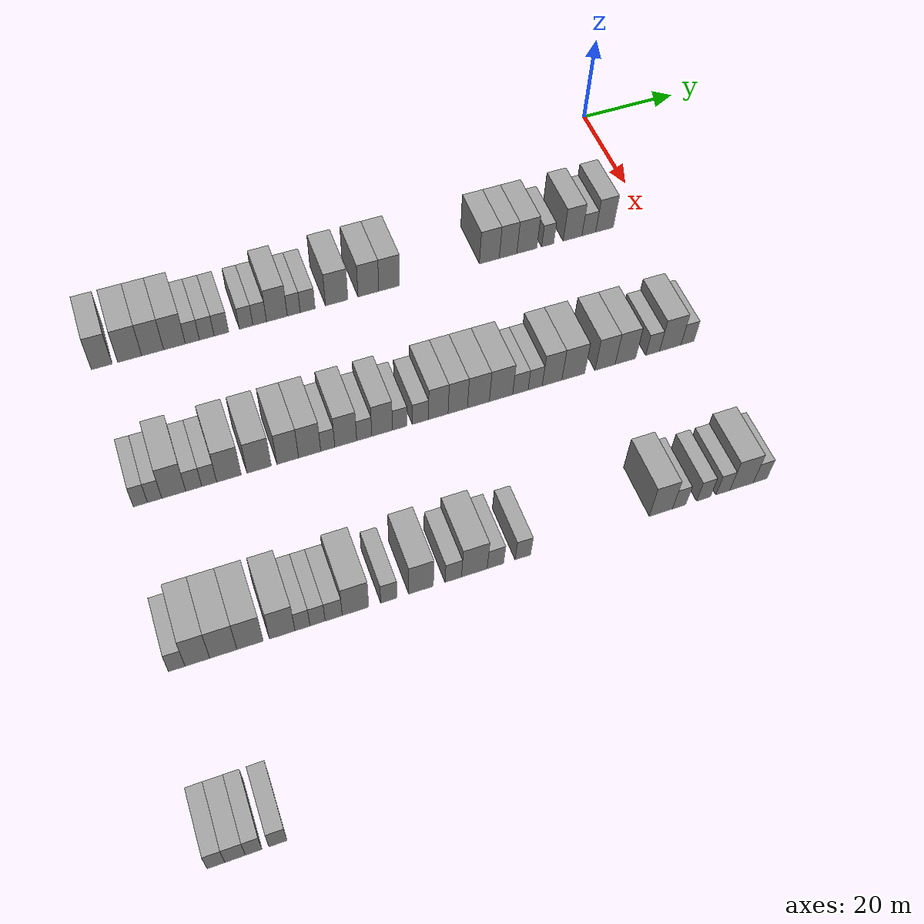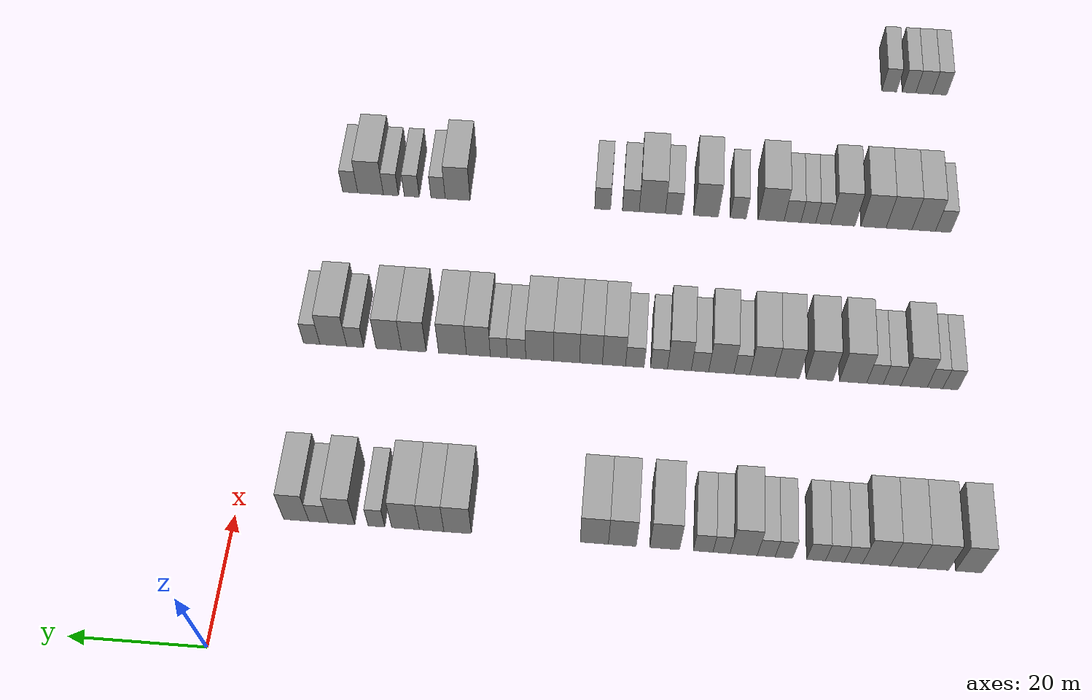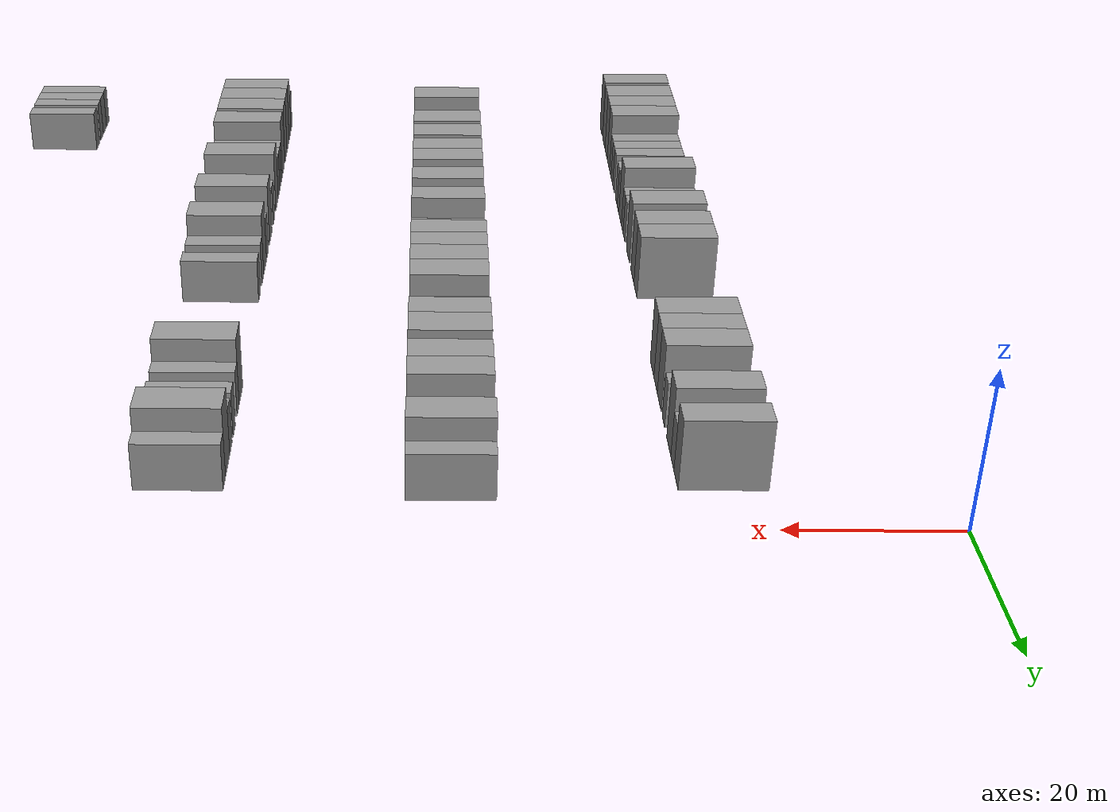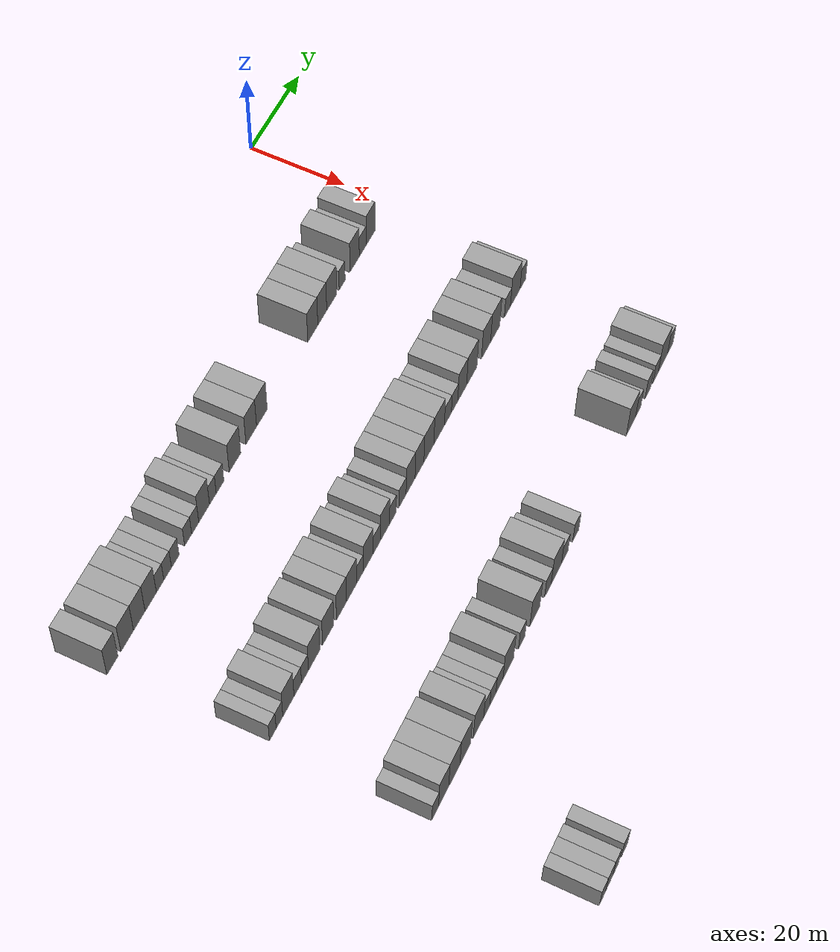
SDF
<sdf version="1.6">
 <world name="default">
  <model name="building_81">
   <static>1</static>
   <pose>25.0000 -107.7932 0 0.000000 0.000000 0.000000</pose>
   <link name="link">
    <pose>0 0 4.50 0 0 0</pose>
    <collision name="collision"><geometry><box><size>10.0000 3.7948 9.0000</size></box></geometry></collision>
    <visual name="visual">
     <cast_shadows>0</cast_shadows>
     <geometry><box><size>10.0000 3.7948 9.0000</size></box></geometry>
     <material>
      <script>
       <uri>model://grey_wall/materials/scripts</uri>
       <uri>model://grey_wall/materials/textures</uri>
       <name>vrc/grey_wall</name>
      </script>
     </material>
    </visual>
   </link>
  </model>
  <model name="building_82">
   <static>1</static>
   <pose>25.0000 -102.7055 0 0.000000 0.000000 0.000000</pose>
   <link name="link">
    <pose>0 0 4.50 0 0 0</pose>
    <collision name="collision"><geometry><box><size>10.0000 4.3806 9.0000</size></box></geometry></collision>
    <visual name="visual">
     <cast_shadows>0</cast_shadows>
     <geometry><box><size>10.0000 4.3806 9.0000</size></box></geometry>
     <material>
      <script>
       <uri>model://grey_wall/materials/scripts</uri>
       <uri>model://grey_wall/materials/textures</uri>
       <name>vrc/grey_wall</name>
      </script>
     </material>
    </visual>
   </link>
  </model>
  <model name="building_83">
   <static>1</static>
   <pose>25.0000 -98.4993 0 0.000000 0.000000 0.000000</pose>
   <link name="link">
    <pose>0 0 4.50 0 0 0</pose>
    <collision name="collision"><geometry><box><size>10.0000 4.0318 9.0000</size></box></geometry></collision>
    <visual name="visual">
     <cast_shadows>0</cast_shadows>
     <geometry><box><size>10.0000 4.0318 9.0000</size></box></geometry>
     <material>
      <script>
       <uri>model://grey_wall/materials/scripts</uri>
       <uri>model://grey_wall/materials/textures</uri>
       <name>vrc/grey_wall</name>
      </script>
     </material>
    </visual>
   </link>
  </model>
  <model name="building_84">
   <static>1</static>
   <pose>25.0000 -94.4775 0 0.000000 0.000000 0.000000</pose>
   <link name="link">
    <pose>0 0 4.50 0 0 0</pose>
    <collision name="collision"><geometry><box><size>10.0000 4.0117 9.0000</size></box></geometry></collision>
    <visual name="visual">
     <cast_shadows>0</cast_shadows>
     <geometry><box><size>10.0000 4.0117 9.0000</size></box></geometry>
     <material>
      <script>
       <uri>model://grey_wall/materials/scripts</uri>
       <uri>model://grey_wall/materials/textures</uri>
       <name>vrc/grey_wall</name>
      </script>
     </material>
    </visual>
   </link>
  </model>
  <model name="building_85">
   <static>1</static>
   <pose>25.0000 -91.1583 0 0.000000 0.000000 0.000000</pose>
   <link name="link">
    <pose>0 0 3.00 0 0 0</pose>
    <collision name="collision"><geometry><box><size>10.0000 2.6267 6.0000</size></box></geometry></collision>
    <visual name="visual">
     <cast_shadows>0</cast_shadows>
     <geometry><box><size>10.0000 2.6267 6.0000</size></box></geometry>
     <material>
      <script>
       <uri>model://grey_wall/materials/scripts</uri>
       <uri>model://grey_wall/materials/textures</uri>
       <name>vrc/grey_wall</name>
      </script>
     </material>
    </visual>
   </link>
  </model>
  <model name="building_86">
   <static>1</static>
   <pose>25.0000 -88.4710 0 0.000000 0.000000 0.000000</pose>
   <link name="link">
    <pose>0 0 3.00 0 0 0</pose>
    <collision name="collision"><geometry><box><size>10.0000 2.7479 6.0000</size></box></geometry></collision>
    <visual name="visual">
     <cast_shadows>0</cast_shadows>
     <geometry><box><size>10.0000 2.7479 6.0000</size></box></geometry>
     <material>
      <script>
       <uri>model://grey_wall/materials/scripts</uri>
       <uri>model://grey_wall/materials/textures</uri>
       <name>vrc/grey_wall</name>
      </script>
     </material>
    </visual>
   </link>
  </model>
  <model name="building_87">
   <static>1</static>
   <pose>25.0000 -85.7237 0 0.000000 0.000000 0.000000</pose>
   <link name="link">
    <pose>0 0 3.00 0 0 0</pose>
    <collision name="collision"><geometry><box><size>10.0000 2.7467 6.0000</size></box></geometry></collision>
    <visual name="visual">
     <cast_shadows>0</cast_shadows>
     <geometry><box><size>10.0000 2.7467 6.0000</size></box></geometry>
     <material>
      <script>
       <uri>model://grey_wall/materials/scripts</uri>
       <uri>model://grey_wall/materials/textures</uri>
       <name>vrc/grey_wall</name>
      </script>
     </material>
    </visual>
   </link>
  </model>
  <model name="building_88">
   <static>1</static>
   <pose>25.0000 -81.0692 0 0.000000 0.000000 0.000000</pose>
   <link name="link">
    <pose>0 0 3.00 0 0 0</pose>
    <collision name="collision"><geometry><box><size>10.0000 2.5622 6.0000</size></box></geometry></collision>
    <visual name="visual">
     <cast_shadows>0</cast_shadows>
     <geometry><box><size>10.0000 2.5622 6.0000</size></box></geometry>
     <material>
      <script>
       <uri>model://grey_wall/materials/scripts</uri>
       <uri>model://grey_wall/materials/textures</uri>
       <name>vrc/grey_wall</name>
      </script>
     </material>
    </visual>
   </link>
  </model>
  <model name="building_89">
   <static>1</static>
   <pose>25.0000 -78.4886 0 0.000000 0.000000 0.000000</pose>
   <link name="link">
    <pose>0 0 3.00 0 0 0</pose>
    <collision name="collision"><geometry><box><size>10.0000 2.5990 6.0000</size></box></geometry></collision>
    <visual name="visual">
     <cast_shadows>0</cast_shadows>
     <geometry><box><size>10.0000 2.5990 6.0000</size></box></geometry>
     <material>
      <script>
       <uri>model://grey_wall/materials/scripts</uri>
       <uri>model://grey_wall/materials/textures</uri>
       <name>vrc/grey_wall</name>
      </script>
     </material>
    </visual>
   </link>
  </model>
  <model name="building_90">
   <static>1</static>
   <pose>25.0000 -75.2040 0 0.000000 0.000000 0.000000</pose>
   <link name="link">
    <pose>0 0 4.50 0 0 0</pose>
    <collision name="collision"><geometry><box><size>10.0000 3.9703 9.0000</size></box></geometry></collision>
    <visual name="visual">
     <cast_shadows>0</cast_shadows>
     <geometry><box><size>10.0000 3.9703 9.0000</size></box></geometry>
     <material>
      <script>
       <uri>model://grey_wall/materials/scripts</uri>
       <uri>model://grey_wall/materials/textures</uri>
       <name>vrc/grey_wall</name>
      </script>
     </material>
    </visual>
   </link>
  </model>
  <model name="building_91">
   <static>1</static>
   <pose>25.0000 -71.9762 0 0.000000 0.000000 0.000000</pose>
   <link name="link">
    <pose>0 0 3.00 0 0 0</pose>
    <collision name="collision"><geometry><box><size>10.0000 2.4852 6.0000</size></box></geometry></collision>
    <visual name="visual">
     <cast_shadows>0</cast_shadows>
     <geometry><box><size>10.0000 2.4852 6.0000</size></box></geometry>
     <material>
      <script>
       <uri>model://grey_wall/materials/scripts</uri>
       <uri>model://grey_wall/materials/textures</uri>
       <name>vrc/grey_wall</name>
      </script>
     </material>
    </visual>
   </link>
  </model>
  <model name="building_92">
   <static>1</static>
   <pose>25.0000 -69.2979 0 0.000000 0.000000 0.000000</pose>
   <link name="link">
    <pose>0 0 3.00 0 0 0</pose>
    <collision name="collision"><geometry><box><size>10.0000 2.8715 6.0000</size></box></geometry></collision>
    <visual name="visual">
     <cast_shadows>0</cast_shadows>
     <geometry><box><size>10.0000 2.8715 6.0000</size></box></geometry>
     <material>
      <script>
       <uri>model://grey_wall/materials/scripts</uri>
       <uri>model://grey_wall/materials/textures</uri>
       <name>vrc/grey_wall</name>
      </script>
     </material>
    </visual>
   </link>
  </model>
  <model name="building_93">
   <static>1</static>
   <pose>25.0000 -63.6790 0 0.000000 0.000000 0.000000</pose>
   <link name="link">
    <pose>0 0 4.50 0 0 0</pose>
    <collision name="collision"><geometry><box><size>10.0000 4.3662 9.0000</size></box></geometry></collision>
    <visual name="visual">
     <cast_shadows>0</cast_shadows>
     <geometry><box><size>10.0000 4.3662 9.0000</size></box></geometry>
     <material>
      <script>
       <uri>model://grey_wall/materials/scripts</uri>
       <uri>model://grey_wall/materials/textures</uri>
       <name>vrc/grey_wall</name>
      </script>
     </material>
    </visual>
   </link>
  </model>
  <model name="building_94">
   <static>1</static>
   <pose>25.0000 -57.4563 0 0.000000 0.000000 0.000000</pose>
   <link name="link">
    <pose>0 0 4.50 0 0 0</pose>
    <collision name="collision"><geometry><box><size>10.0000 4.0792 9.0000</size></box></geometry></collision>
    <visual name="visual">
     <cast_shadows>0</cast_shadows>
     <geometry><box><size>10.0000 4.0792 9.0000</size></box></geometry>
     <material>
      <script>
       <uri>model://grey_wall/materials/scripts</uri>
       <uri>model://grey_wall/materials/textures</uri>
       <name>vrc/grey_wall</name>
      </script>
     </material>
    </visual>
   </link>
  </model>
  <model name="building_95">
   <static>1</static>
   <pose>25.0000 -53.3554 0 0.000000 0.000000 0.000000</pose>
   <link name="link">
    <pose>0 0 4.50 0 0 0</pose>
    <collision name="collision"><geometry><box><size>10.0000 4.1227 9.0000</size></box></geometry></collision>
    <visual name="visual">
     <cast_shadows>0</cast_shadows>
     <geometry><box><size>10.0000 4.1227 9.0000</size></box></geometry>
     <material>
      <script>
       <uri>model://grey_wall/materials/scripts</uri>
       <uri>model://grey_wall/materials/textures</uri>
       <name>vrc/grey_wall</name>
      </script>
     </material>
    </visual>
   </link>
  </model>
  <model name="building_96">
   <static>1</static>
   <pose>25.0000 -33.1854 0 0.000000 0.000000 0.000000</pose>
   <link name="link">
    <pose>0 0 4.50 0 0 0</pose>
    <collision name="collision"><geometry><box><size>10.0000 4.0724 9.0000</size></box></geometry></collision>
    <visual name="visual">
     <cast_shadows>0</cast_shadows>
     <geometry><box><size>10.0000 4.0724 9.0000</size></box></geometry>
     <material>
      <script>
       <uri>model://grey_wall/materials/scripts</uri>
       <uri>model://grey_wall/materials/textures</uri>
       <name>vrc/grey_wall</name>
      </script>
     </material>
    </visual>
   </link>
  </model>
  <model name="building_97">
   <static>1</static>
   <pose>25.0000 -29.3353 0 0.000000 0.000000 0.000000</pose>
   <link name="link">
    <pose>0 0 4.50 0 0 0</pose>
    <collision name="collision"><geometry><box><size>10.0000 3.6278 9.0000</size></box></geometry></collision>
    <visual name="visual">
     <cast_shadows>0</cast_shadows>
     <geometry><box><size>10.0000 3.6278 9.0000</size></box></geometry>
     <material>
      <script>
       <uri>model://grey_wall/materials/scripts</uri>
       <uri>model://grey_wall/materials/textures</uri>
       <name>vrc/grey_wall</name>
      </script>
     </material>
    </visual>
   </link>
  </model>
  <model name="building_98">
   <static>1</static>
   <pose>25.0000 -25.4486 0 0.000000 0.000000 0.000000</pose>
   <link name="link">
    <pose>0 0 4.50 0 0 0</pose>
    <collision name="collision"><geometry><box><size>10.0000 4.1456 9.0000</size></box></geometry></collision>
    <visual name="visual">
     <cast_shadows>0</cast_shadows>
     <geometry><box><size>10.0000 4.1456 9.0000</size></box></geometry>
     <material>
      <script>
       <uri>model://grey_wall/materials/scripts</uri>
       <uri>model://grey_wall/materials/textures</uri>
       <name>vrc/grey_wall</name>
      </script>
     </material>
    </visual>
   </link>
  </model>
  <model name="building_99">
   <static>1</static>
   <pose>25.0000 -21.1285 0 0.000000 0.000000 0.000000</pose>
   <link name="link">
    <pose>0 0 3.00 0 0 0</pose>
    <collision name="collision"><geometry><box><size>10.0000 2.4947 6.0000</size></box></geometry></collision>
    <visual name="visual">
     <cast_shadows>0</cast_shadows>
     <geometry><box><size>10.0000 2.4947 6.0000</size></box></geometry>
     <material>
      <script>
       <uri>model://grey_wall/materials/scripts</uri>
       <uri>model://grey_wall/materials/textures</uri>
       <name>vrc/grey_wall</name>
      </script>
     </material>
    </visual>
   </link>
  </model>
  <model name="building_100">
   <static>1</static>
   <pose>25.0000 -15.9112 0 0.000000 0.000000 0.000000</pose>
   <link name="link">
    <pose>0 0 4.50 0 0 0</pose>
    <collision name="collision"><geometry><box><size>10.0000 3.9399 9.0000</size></box></geometry></collision>
    <visual name="visual">
     <cast_shadows>0</cast_shadows>
     <geometry><box><size>10.0000 3.9399 9.0000</size></box></geometry>
     <material>
      <script>
       <uri>model://grey_wall/materials/scripts</uri>
       <uri>model://grey_wall/materials/textures</uri>
       <name>vrc/grey_wall</name>
      </script>
     </material>
    </visual>
   </link>
  </model>
  <model name="building_101">
   <static>1</static>
   <pose>25.0000 -12.4846 0 0.000000 0.000000 0.000000</pose>
   <link name="link">
    <pose>0 0 3.00 0 0 0</pose>
    <collision name="collision"><geometry><box><size>10.0000 2.9132 6.0000</size></box></geometry></collision>
    <visual name="visual">
     <cast_shadows>0</cast_shadows>
     <geometry><box><size>10.0000 2.9132 6.0000</size></box></geometry>
     <material>
      <script>
       <uri>model://grey_wall/materials/scripts</uri>
       <uri>model://grey_wall/materials/textures</uri>
       <name>vrc/grey_wall</name>
      </script>
     </material>
    </visual>
   </link>
  </model>
  <model name="building_102">
   <static>1</static>
   <pose>25.0000 -9.1486 0 0.000000 0.000000 0.000000</pose>
   <link name="link">
    <pose>0 0 4.50 0 0 0</pose>
    <collision name="collision"><geometry><box><size>10.0000 3.7589 9.0000</size></box></geometry></collision>
    <visual name="visual">
     <cast_shadows>0</cast_shadows>
     <geometry><box><size>10.0000 3.7589 9.0000</size></box></geometry>
     <material>
      <script>
       <uri>model://grey_wall/materials/scripts</uri>
       <uri>model://grey_wall/materials/textures</uri>
       <name>vrc/grey_wall</name>
      </script>
     </material>
    </visual>
   </link>
  </model>
  <model name="building_307">
   <static>1</static>
   <pose>55.0000 -107.2607 0 0.000000 0.000000 0.000000</pose>
   <link name="link">
    <pose>0 0 3.00 0 0 0</pose>
    <collision name="collision"><geometry><box><size>10.0000 2.4069 6.0000</size></box></geometry></collision>
    <visual name="visual">
     <cast_shadows>0</cast_shadows>
     <geometry><box><size>10.0000 2.4069 6.0000</size></box></geometry>
     <material>
      <script>
       <uri>model://grey_wall/materials/scripts</uri>
       <uri>model://grey_wall/materials/textures</uri>
       <name>vrc/grey_wall</name>
      </script>
     </material>
    </visual>
   </link>
  </model>
  <model name="building_308">
   <static>1</static>
   <pose>55.0000 -104.8428 0 0.000000 0.000000 0.000000</pose>
   <link name="link">
    <pose>0 0 3.00 0 0 0</pose>
    <collision name="collision"><geometry><box><size>10.0000 2.4288 6.0000</size></box></geometry></collision>
    <visual name="visual">
     <cast_shadows>0</cast_shadows>
     <geometry><box><size>10.0000 2.4288 6.0000</size></box></geometry>
     <material>
      <script>
       <uri>model://grey_wall/materials/scripts</uri>
       <uri>model://grey_wall/materials/textures</uri>
       <name>vrc/grey_wall</name>
      </script>
     </material>
    </visual>
   </link>
  </model>
  <model name="building_309">
   <static>1</static>
   <pose>55.0000 -101.5857 0 0.000000 0.000000 0.000000</pose>
   <link name="link">
    <pose>0 0 4.50 0 0 0</pose>
    <collision name="collision"><geometry><box><size>10.0000 4.0855 9.0000</size></box></geometry></collision>
    <visual name="visual">
     <cast_shadows>0</cast_shadows>
     <geometry><box><size>10.0000 4.0855 9.0000</size></box></geometry>
     <material>
      <script>
       <uri>model://grey_wall/materials/scripts</uri>
       <uri>model://grey_wall/materials/textures</uri>
       <name>vrc/grey_wall</name>
      </script>
     </material>
    </visual>
   </link>
  </model>
  <model name="building_310">
   <static>1</static>
   <pose>55.0000 -98.1644 0 0.000000 0.000000 0.000000</pose>
   <link name="link">
    <pose>0 0 3.00 0 0 0</pose>
    <collision name="collision"><geometry><box><size>10.0000 2.7570 6.0000</size></box></geometry></collision>
    <visual name="visual">
     <cast_shadows>0</cast_shadows>
     <geometry><box><size>10.0000 2.7570 6.0000</size></box></geometry>
     <material>
      <script>
       <uri>model://grey_wall/materials/scripts</uri>
       <uri>model://grey_wall/materials/textures</uri>
       <name>vrc/grey_wall</name>
      </script>
     </material>
    </visual>
   </link>
  </model>
  <model name="building_311">
   <static>1</static>
   <pose>55.0000 -95.5019 0 0.000000 0.000000 0.000000</pose>
   <link name="link">
    <pose>0 0 3.00 0 0 0</pose>
    <collision name="collision"><geometry><box><size>10.0000 2.5680 6.0000</size></box></geometry></collision>
    <visual name="visual">
     <cast_shadows>0</cast_shadows>
     <geometry><box><size>10.0000 2.5680 6.0000</size></box></geometry>
     <material>
      <script>
       <uri>model://grey_wall/materials/scripts</uri>
       <uri>model://grey_wall/materials/textures</uri>
       <name>vrc/grey_wall</name>
      </script>
     </material>
    </visual>
   </link>
  </model>
  <model name="building_312">
   <static>1</static>
   <pose>55.0000 -92.0852 0 0.000000 0.000000 0.000000</pose>
   <link name="link">
    <pose>0 0 4.50 0 0 0</pose>
    <collision name="collision"><geometry><box><size>10.0000 4.2654 9.0000</size></box></geometry></collision>
    <visual name="visual">
     <cast_shadows>0</cast_shadows>
     <geometry><box><size>10.0000 4.2654 9.0000</size></box></geometry>
     <material>
      <script>
       <uri>model://grey_wall/materials/scripts</uri>
       <uri>model://grey_wall/materials/textures</uri>
       <name>vrc/grey_wall</name>
      </script>
     </material>
    </visual>
   </link>
  </model>
  <model name="building_313">
   <static>1</static>
   <pose>55.0000 -86.8245 0 0.000000 0.000000 0.000000</pose>
   <link name="link">
    <pose>0 0 4.50 0 0 0</pose>
    <collision name="collision"><geometry><box><size>10.0000 4.2560 9.0000</size></box></geometry></collision>
    <visual name="visual">
     <cast_shadows>0</cast_shadows>
     <geometry><box><size>10.0000 4.2560 9.0000</size></box></geometry>
     <material>
      <script>
       <uri>model://grey_wall/materials/scripts</uri>
       <uri>model://grey_wall/materials/textures</uri>
       <name>vrc/grey_wall</name>
      </script>
     </material>
    </visual>
   </link>
  </model>
  <model name="building_314">
   <static>1</static>
   <pose>55.0000 -81.7816 0 0.000000 0.000000 0.000000</pose>
   <link name="link">
    <pose>0 0 4.50 0 0 0</pose>
    <collision name="collision"><geometry><box><size>10.0000 3.8299 9.0000</size></box></geometry></collision>
    <visual name="visual">
     <cast_shadows>0</cast_shadows>
     <geometry><box><size>10.0000 3.8299 9.0000</size></box></geometry>
     <material>
      <script>
       <uri>model://grey_wall/materials/scripts</uri>
       <uri>model://grey_wall/materials/textures</uri>
       <name>vrc/grey_wall</name>
      </script>
     </material>
    </visual>
   </link>
  </model>
  <model name="building_315">
   <static>1</static>
   <pose>55.0000 -77.8969 0 0.000000 0.000000 0.000000</pose>
   <link name="link">
    <pose>0 0 4.50 0 0 0</pose>
    <collision name="collision"><geometry><box><size>10.0000 3.9395 9.0000</size></box></geometry></collision>
    <visual name="visual">
     <cast_shadows>0</cast_shadows>
     <geometry><box><size>10.0000 3.9395 9.0000</size></box></geometry>
     <material>
      <script>
       <uri>model://grey_wall/materials/scripts</uri>
       <uri>model://grey_wall/materials/textures</uri>
       <name>vrc/grey_wall</name>
      </script>
     </material>
    </visual>
   </link>
  </model>
  <model name="building_316">
   <static>1</static>
   <pose>55.0000 -74.6661 0 0.000000 0.000000 0.000000</pose>
   <link name="link">
    <pose>0 0 3.00 0 0 0</pose>
    <collision name="collision"><geometry><box><size>10.0000 2.5219 6.0000</size></box></geometry></collision>
    <visual name="visual">
     <cast_shadows>0</cast_shadows>
     <geometry><box><size>10.0000 2.5219 6.0000</size></box></geometry>
     <material>
      <script>
       <uri>model://grey_wall/materials/scripts</uri>
       <uri>model://grey_wall/materials/textures</uri>
       <name>vrc/grey_wall</name>
      </script>
     </material>
    </visual>
   </link>
  </model>
  <model name="building_317">
   <static>1</static>
   <pose>55.0000 -71.4328 0 0.000000 0.000000 0.000000</pose>
   <link name="link">
    <pose>0 0 4.50 0 0 0</pose>
    <collision name="collision"><geometry><box><size>10.0000 3.9449 9.0000</size></box></geometry></collision>
    <visual name="visual">
     <cast_shadows>0</cast_shadows>
     <geometry><box><size>10.0000 3.9449 9.0000</size></box></geometry>
     <material>
      <script>
       <uri>model://grey_wall/materials/scripts</uri>
       <uri>model://grey_wall/materials/textures</uri>
       <name>vrc/grey_wall</name>
      </script>
     </material>
    </visual>
   </link>
  </model>
  <model name="building_318">
   <static>1</static>
   <pose>55.0000 -68.0914 0 0.000000 0.000000 0.000000</pose>
   <link name="link">
    <pose>0 0 3.00 0 0 0</pose>
    <collision name="collision"><geometry><box><size>10.0000 2.7379 6.0000</size></box></geometry></collision>
    <visual name="visual">
     <cast_shadows>0</cast_shadows>
     <geometry><box><size>10.0000 2.7379 6.0000</size></box></geometry>
     <material>
      <script>
       <uri>model://grey_wall/materials/scripts</uri>
       <uri>model://grey_wall/materials/textures</uri>
       <name>vrc/grey_wall</name>
      </script>
     </material>
    </visual>
   </link>
  </model>
  <model name="building_319">
   <static>1</static>
   <pose>55.0000 -64.8532 0 0.000000 0.000000 0.000000</pose>
   <link name="link">
    <pose>0 0 4.50 0 0 0</pose>
    <collision name="collision"><geometry><box><size>10.0000 3.7384 9.0000</size></box></geometry></collision>
    <visual name="visual">
     <cast_shadows>0</cast_shadows>
     <geometry><box><size>10.0000 3.7384 9.0000</size></box></geometry>
     <material>
      <script>
       <uri>model://grey_wall/materials/scripts</uri>
       <uri>model://grey_wall/materials/textures</uri>
       <name>vrc/grey_wall</name>
      </script>
     </material>
    </visual>
   </link>
  </model>
  <model name="building_320">
   <static>1</static>
   <pose>55.0000 -61.6461 0 0.000000 0.000000 0.000000</pose>
   <link name="link">
    <pose>0 0 3.00 0 0 0</pose>
    <collision name="collision"><geometry><box><size>10.0000 2.6758 6.0000</size></box></geometry></collision>
    <visual name="visual">
     <cast_shadows>0</cast_shadows>
     <geometry><box><size>10.0000 2.6758 6.0000</size></box></geometry>
     <material>
      <script>
       <uri>model://grey_wall/materials/scripts</uri>
       <uri>model://grey_wall/materials/textures</uri>
       <name>vrc/grey_wall</name>
      </script>
     </material>
    </visual>
   </link>
  </model>
  <model name="building_321">
   <static>1</static>
   <pose>55.0000 -57.8366 0 0.000000 0.000000 0.000000</pose>
   <link name="link">
    <pose>0 0 3.00 0 0 0</pose>
    <collision name="collision"><geometry><box><size>10.0000 2.9432 6.0000</size></box></geometry></collision>
    <visual name="visual">
     <cast_shadows>0</cast_shadows>
     <geometry><box><size>10.0000 2.9432 6.0000</size></box></geometry>
     <material>
      <script>
       <uri>model://grey_wall/materials/scripts</uri>
       <uri>model://grey_wall/materials/textures</uri>
       <name>vrc/grey_wall</name>
      </script>
     </material>
    </visual>
   </link>
  </model>
  <model name="building_322">
   <static>1</static>
   <pose>55.0000 -54.5362 0 0.000000 0.000000 0.000000</pose>
   <link name="link">
    <pose>0 0 4.50 0 0 0</pose>
    <collision name="collision"><geometry><box><size>10.0000 3.6576 9.0000</size></box></geometry></collision>
    <visual name="visual">
     <cast_shadows>0</cast_shadows>
     <geometry><box><size>10.0000 3.6576 9.0000</size></box></geometry>
     <material>
      <script>
       <uri>model://grey_wall/materials/scripts</uri>
       <uri>model://grey_wall/materials/textures</uri>
       <name>vrc/grey_wall</name>
      </script>
     </material>
    </visual>
   </link>
  </model>
  <model name="building_323">
   <static>1</static>
   <pose>55.0000 -50.8978 0 0.000000 0.000000 0.000000</pose>
   <link name="link">
    <pose>0 0 4.50 0 0 0</pose>
    <collision name="collision"><geometry><box><size>10.0000 3.6192 9.0000</size></box></geometry></collision>
    <visual name="visual">
     <cast_shadows>0</cast_shadows>
     <geometry><box><size>10.0000 3.6192 9.0000</size></box></geometry>
     <material>
      <script>
       <uri>model://grey_wall/materials/scripts</uri>
       <uri>model://grey_wall/materials/textures</uri>
       <name>vrc/grey_wall</name>
      </script>
     </material>
    </visual>
   </link>
  </model>
  <model name="building_324">
   <static>1</static>
   <pose>55.0000 -47.0264 0 0.000000 0.000000 0.000000</pose>
   <link name="link">
    <pose>0 0 4.50 0 0 0</pose>
    <collision name="collision"><geometry><box><size>10.0000 4.1235 9.0000</size></box></geometry></collision>
    <visual name="visual">
     <cast_shadows>0</cast_shadows>
     <geometry><box><size>10.0000 4.1235 9.0000</size></box></geometry>
     <material>
      <script>
       <uri>model://grey_wall/materials/scripts</uri>
       <uri>model://grey_wall/materials/textures</uri>
       <name>vrc/grey_wall</name>
      </script>
     </material>
    </visual>
   </link>
  </model>
  <model name="building_325">
   <static>1</static>
   <pose>55.0000 -42.7560 0 0.000000 0.000000 0.000000</pose>
   <link name="link">
    <pose>0 0 4.50 0 0 0</pose>
    <collision name="collision"><geometry><box><size>10.0000 4.4173 9.0000</size></box></geometry></collision>
    <visual name="visual">
     <cast_shadows>0</cast_shadows>
     <geometry><box><size>10.0000 4.4173 9.0000</size></box></geometry>
     <material>
      <script>
       <uri>model://grey_wall/materials/scripts</uri>
       <uri>model://grey_wall/materials/textures</uri>
       <name>vrc/grey_wall</name>
      </script>
     </material>
    </visual>
   </link>
  </model>
  <model name="building_326">
   <static>1</static>
   <pose>55.0000 -39.0714 0 0.000000 0.000000 0.000000</pose>
   <link name="link">
    <pose>0 0 3.00 0 0 0</pose>
    <collision name="collision"><geometry><box><size>10.0000 2.9520 6.0000</size></box></geometry></collision>
    <visual name="visual">
     <cast_shadows>0</cast_shadows>
     <geometry><box><size>10.0000 2.9520 6.0000</size></box></geometry>
     <material>
      <script>
       <uri>model://grey_wall/materials/scripts</uri>
       <uri>model://grey_wall/materials/textures</uri>
       <name>vrc/grey_wall</name>
      </script>
     </material>
    </visual>
   </link>
  </model>
  <model name="building_327">
   <static>1</static>
   <pose>55.0000 -36.2499 0 0.000000 0.000000 0.000000</pose>
   <link name="link">
    <pose>0 0 3.00 0 0 0</pose>
    <collision name="collision"><geometry><box><size>10.0000 2.6911 6.0000</size></box></geometry></collision>
    <visual name="visual">
     <cast_shadows>0</cast_shadows>
     <geometry><box><size>10.0000 2.6911 6.0000</size></box></geometry>
     <material>
      <script>
       <uri>model://grey_wall/materials/scripts</uri>
       <uri>model://grey_wall/materials/textures</uri>
       <name>vrc/grey_wall</name>
      </script>
     </material>
    </visual>
   </link>
  </model>
  <model name="building_328">
   <static>1</static>
   <pose>55.0000 -33.0095 0 0.000000 0.000000 0.000000</pose>
   <link name="link">
    <pose>0 0 4.50 0 0 0</pose>
    <collision name="collision"><geometry><box><size>10.0000 3.7897 9.0000</size></box></geometry></collision>
    <visual name="visual">
     <cast_shadows>0</cast_shadows>
     <geometry><box><size>10.0000 3.7897 9.0000</size></box></geometry>
     <material>
      <script>
       <uri>model://grey_wall/materials/scripts</uri>
       <uri>model://grey_wall/materials/textures</uri>
       <name>vrc/grey_wall</name>
      </script>
     </material>
    </visual>
   </link>
  </model>
  <model name="building_329">
   <static>1</static>
   <pose>55.0000 -28.8883 0 0.000000 0.000000 0.000000</pose>
   <link name="link">
    <pose>0 0 4.50 0 0 0</pose>
    <collision name="collision"><geometry><box><size>10.0000 4.4527 9.0000</size></box></geometry></collision>
    <visual name="visual">
     <cast_shadows>0</cast_shadows>
     <geometry><box><size>10.0000 4.4527 9.0000</size></box></geometry>
     <material>
      <script>
       <uri>model://grey_wall/materials/scripts</uri>
       <uri>model://grey_wall/materials/textures</uri>
       <name>vrc/grey_wall</name>
      </script>
     </material>
    </visual>
   </link>
  </model>
  <model name="building_330">
   <static>1</static>
   <pose>55.0000 -22.6788 0 0.000000 0.000000 0.000000</pose>
   <link name="link">
    <pose>0 0 4.50 0 0 0</pose>
    <collision name="collision"><geometry><box><size>10.0000 3.9663 9.0000</size></box></geometry></collision>
    <visual name="visual">
     <cast_shadows>0</cast_shadows>
     <geometry><box><size>10.0000 3.9663 9.0000</size></box></geometry>
     <material>
      <script>
       <uri>model://grey_wall/materials/scripts</uri>
       <uri>model://grey_wall/materials/textures</uri>
       <name>vrc/grey_wall</name>
      </script>
     </material>
    </visual>
   </link>
  </model>
  <model name="building_331">
   <static>1</static>
   <pose>55.0000 -18.6706 0 0.000000 0.000000 0.000000</pose>
   <link name="link">
    <pose>0 0 4.50 0 0 0</pose>
    <collision name="collision"><geometry><box><size>10.0000 4.0502 9.0000</size></box></geometry></collision>
    <visual name="visual">
     <cast_shadows>0</cast_shadows>
     <geometry><box><size>10.0000 4.0502 9.0000</size></box></geometry>
     <material>
      <script>
       <uri>model://grey_wall/materials/scripts</uri>
       <uri>model://grey_wall/materials/textures</uri>
       <name>vrc/grey_wall</name>
      </script>
     </material>
    </visual>
   </link>
  </model>
  <model name="building_332">
   <static>1</static>
   <pose>55.0000 -13.2770 0 0.000000 0.000000 0.000000</pose>
   <link name="link">
    <pose>0 0 3.00 0 0 0</pose>
    <collision name="collision"><geometry><box><size>10.0000 2.7370 6.0000</size></box></geometry></collision>
    <visual name="visual">
     <cast_shadows>0</cast_shadows>
     <geometry><box><size>10.0000 2.7370 6.0000</size></box></geometry>
     <material>
      <script>
       <uri>model://grey_wall/materials/scripts</uri>
       <uri>model://grey_wall/materials/textures</uri>
       <name>vrc/grey_wall</name>
      </script>
     </material>
    </visual>
   </link>
  </model>
  <model name="building_333">
   <static>1</static>
   <pose>55.0000 -9.7554 0 0.000000 0.000000 0.000000</pose>
   <link name="link">
    <pose>0 0 4.50 0 0 0</pose>
    <collision name="collision"><geometry><box><size>10.0000 4.3061 9.0000</size></box></geometry></collision>
    <visual name="visual">
     <cast_shadows>0</cast_shadows>
     <geometry><box><size>10.0000 4.3061 9.0000</size></box></geometry>
     <material>
      <script>
       <uri>model://grey_wall/materials/scripts</uri>
       <uri>model://grey_wall/materials/textures</uri>
       <name>vrc/grey_wall</name>
      </script>
     </material>
    </visual>
   </link>
  </model>
  <model name="building_334">
   <static>1</static>
   <pose>55.0000 -6.2853 0 0.000000 0.000000 0.000000</pose>
   <link name="link">
    <pose>0 0 3.00 0 0 0</pose>
    <collision name="collision"><geometry><box><size>10.0000 2.6341 6.0000</size></box></geometry></collision>
    <visual name="visual">
     <cast_shadows>0</cast_shadows>
     <geometry><box><size>10.0000 2.6341 6.0000</size></box></geometry>
     <material>
      <script>
       <uri>model://grey_wall/materials/scripts</uri>
       <uri>model://grey_wall/materials/textures</uri>
       <name>vrc/grey_wall</name>
      </script>
     </material>
    </visual>
   </link>
  </model>
  <model name="building_542">
   <static>1</static>
   <pose>85.0000 -108.1105 0 0.000000 0.000000 0.000000</pose>
   <link name="link">
    <pose>0 0 3.00 0 0 0</pose>
    <collision name="collision"><geometry><box><size>10.0000 2.5813 6.0000</size></box></geometry></collision>
    <visual name="visual">
     <cast_shadows>0</cast_shadows>
     <geometry><box><size>10.0000 2.5813 6.0000</size></box></geometry>
     <material>
      <script>
       <uri>model://grey_wall/materials/scripts</uri>
       <uri>model://grey_wall/materials/textures</uri>
       <name>vrc/grey_wall</name>
      </script>
     </material>
    </visual>
   </link>
  </model>
  <model name="building_543">
   <static>1</static>
   <pose>85.0000 -104.8701 0 0.000000 0.000000 0.000000</pose>
   <link name="link">
    <pose>0 0 4.50 0 0 0</pose>
    <collision name="collision"><geometry><box><size>10.0000 3.8994 9.0000</size></box></geometry></collision>
    <visual name="visual">
     <cast_shadows>0</cast_shadows>
     <geometry><box><size>10.0000 3.8994 9.0000</size></box></geometry>
     <material>
      <script>
       <uri>model://grey_wall/materials/scripts</uri>
       <uri>model://grey_wall/materials/textures</uri>
       <name>vrc/grey_wall</name>
      </script>
     </material>
    </visual>
   </link>
  </model>
  <model name="building_544">
   <static>1</static>
   <pose>85.0000 -100.7656 0 0.000000 0.000000 0.000000</pose>
   <link name="link">
    <pose>0 0 4.50 0 0 0</pose>
    <collision name="collision"><geometry><box><size>10.0000 4.3097 9.0000</size></box></geometry></collision>
    <visual name="visual">
     <cast_shadows>0</cast_shadows>
     <geometry><box><size>10.0000 4.3097 9.0000</size></box></geometry>
     <material>
      <script>
       <uri>model://grey_wall/materials/scripts</uri>
       <uri>model://grey_wall/materials/textures</uri>
       <name>vrc/grey_wall</name>
      </script>
     </material>
    </visual>
   </link>
  </model>
  <model name="building_545">
   <static>1</static>
   <pose>85.0000 -96.5099 0 0.000000 0.000000 0.000000</pose>
   <link name="link">
    <pose>0 0 4.50 0 0 0</pose>
    <collision name="collision"><geometry><box><size>10.0000 4.2018 9.0000</size></box></geometry></collision>
    <visual name="visual">
     <cast_shadows>0</cast_shadows>
     <geometry><box><size>10.0000 4.2018 9.0000</size></box></geometry>
     <material>
      <script>
       <uri>model://grey_wall/materials/scripts</uri>
       <uri>model://grey_wall/materials/textures</uri>
       <name>vrc/grey_wall</name>
      </script>
     </material>
    </visual>
   </link>
  </model>
  <model name="building_546">
   <static>1</static>
   <pose>85.0000 -91.3416 0 0.000000 0.000000 0.000000</pose>
   <link name="link">
    <pose>0 0 4.50 0 0 0</pose>
    <collision name="collision"><geometry><box><size>10.0000 4.1349 9.0000</size></box></geometry></collision>
    <visual name="visual">
     <cast_shadows>0</cast_shadows>
     <geometry><box><size>10.0000 4.1349 9.0000</size></box></geometry>
     <material>
      <script>
       <uri>model://grey_wall/materials/scripts</uri>
       <uri>model://grey_wall/materials/textures</uri>
       <name>vrc/grey_wall</name>
      </script>
     </material>
    </visual>
   </link>
  </model>
  <model name="building_547">
   <static>1</static>
   <pose>85.0000 -88.0497 0 0.000000 0.000000 0.000000</pose>
   <link name="link">
    <pose>0 0 3.00 0 0 0</pose>
    <collision name="collision"><geometry><box><size>10.0000 2.4489 6.0000</size></box></geometry></collision>
    <visual name="visual">
     <cast_shadows>0</cast_shadows>
     <geometry><box><size>10.0000 2.4489 6.0000</size></box></geometry>
     <material>
      <script>
       <uri>model://grey_wall/materials/scripts</uri>
       <uri>model://grey_wall/materials/textures</uri>
       <name>vrc/grey_wall</name>
      </script>
     </material>
    </visual>
   </link>
  </model>
  <model name="building_548">
   <static>1</static>
   <pose>85.0000 -85.5867 0 0.000000 0.000000 0.000000</pose>
   <link name="link">
    <pose>0 0 3.00 0 0 0</pose>
    <collision name="collision"><geometry><box><size>10.0000 2.4769 6.0000</size></box></geometry></collision>
    <visual name="visual">
     <cast_shadows>0</cast_shadows>
     <geometry><box><size>10.0000 2.4769 6.0000</size></box></geometry>
     <material>
      <script>
       <uri>model://grey_wall/materials/scripts</uri>
       <uri>model://grey_wall/materials/textures</uri>
       <name>vrc/grey_wall</name>
      </script>
     </material>
    </visual>
   </link>
  </model>
  <model name="building_549">
   <static>1</static>
   <pose>85.0000 -82.9449 0 0.000000 0.000000 0.000000</pose>
   <link name="link">
    <pose>0 0 3.00 0 0 0</pose>
    <collision name="collision"><geometry><box><size>10.0000 2.8067 6.0000</size></box></geometry></collision>
    <visual name="visual">
     <cast_shadows>0</cast_shadows>
     <geometry><box><size>10.0000 2.8067 6.0000</size></box></geometry>
     <material>
      <script>
       <uri>model://grey_wall/materials/scripts</uri>
       <uri>model://grey_wall/materials/textures</uri>
       <name>vrc/grey_wall</name>
      </script>
     </material>
    </visual>
   </link>
  </model>
  <model name="building_550">
   <static>1</static>
   <pose>85.0000 -79.3580 0 0.000000 0.000000 0.000000</pose>
   <link name="link">
    <pose>0 0 4.50 0 0 0</pose>
    <collision name="collision"><geometry><box><size>10.0000 4.3673 9.0000</size></box></geometry></collision>
    <visual name="visual">
     <cast_shadows>0</cast_shadows>
     <geometry><box><size>10.0000 4.3673 9.0000</size></box></geometry>
     <material>
      <script>
       <uri>model://grey_wall/materials/scripts</uri>
       <uri>model://grey_wall/materials/textures</uri>
       <name>vrc/grey_wall</name>
      </script>
     </material>
    </visual>
   </link>
  </model>
  <model name="building_551">
   <static>1</static>
   <pose>85.0000 -73.8249 0 0.000000 0.000000 0.000000</pose>
   <link name="link">
    <pose>0 0 3.00 0 0 0</pose>
    <collision name="collision"><geometry><box><size>10.0000 2.6988 6.0000</size></box></geometry></collision>
    <visual name="visual">
     <cast_shadows>0</cast_shadows>
     <geometry><box><size>10.0000 2.6988 6.0000</size></box></geometry>
     <material>
      <script>
       <uri>model://grey_wall/materials/scripts</uri>
       <uri>model://grey_wall/materials/textures</uri>
       <name>vrc/grey_wall</name>
      </script>
     </material>
    </visual>
   </link>
  </model>
  <model name="building_552">
   <static>1</static>
   <pose>85.0000 -68.4029 0 0.000000 0.000000 0.000000</pose>
   <link name="link">
    <pose>0 0 4.50 0 0 0</pose>
    <collision name="collision"><geometry><box><size>10.0000 4.1453 9.0000</size></box></geometry></collision>
    <visual name="visual">
     <cast_shadows>0</cast_shadows>
     <geometry><box><size>10.0000 4.1453 9.0000</size></box></geometry>
     <material>
      <script>
       <uri>model://grey_wall/materials/scripts</uri>
       <uri>model://grey_wall/materials/textures</uri>
       <name>vrc/grey_wall</name>
      </script>
     </material>
    </visual>
   </link>
  </model>
  <model name="building_553">
   <static>1</static>
   <pose>85.0000 -62.9288 0 0.000000 0.000000 0.000000</pose>
   <link name="link">
    <pose>0 0 3.00 0 0 0</pose>
    <collision name="collision"><geometry><box><size>10.0000 2.8029 6.0000</size></box></geometry></collision>
    <visual name="visual">
     <cast_shadows>0</cast_shadows>
     <geometry><box><size>10.0000 2.8029 6.0000</size></box></geometry>
     <material>
      <script>
       <uri>model://grey_wall/materials/scripts</uri>
       <uri>model://grey_wall/materials/textures</uri>
       <name>vrc/grey_wall</name>
      </script>
     </material>
    </visual>
   </link>
  </model>
  <model name="building_554">
   <static>1</static>
   <pose>85.0000 -59.3223 0 0.000000 0.000000 0.000000</pose>
   <link name="link">
    <pose>0 0 4.50 0 0 0</pose>
    <collision name="collision"><geometry><box><size>10.0000 4.4101 9.0000</size></box></geometry></collision>
    <visual name="visual">
     <cast_shadows>0</cast_shadows>
     <geometry><box><size>10.0000 4.4101 9.0000</size></box></geometry>
     <material>
      <script>
       <uri>model://grey_wall/materials/scripts</uri>
       <uri>model://grey_wall/materials/textures</uri>
       <name>vrc/grey_wall</name>
      </script>
     </material>
    </visual>
   </link>
  </model>
  <model name="building_555">
   <static>1</static>
   <pose>85.0000 -55.6918 0 0.000000 0.000000 0.000000</pose>
   <link name="link">
    <pose>0 0 3.00 0 0 0</pose>
    <collision name="collision"><geometry><box><size>10.0000 2.8509 6.0000</size></box></geometry></collision>
    <visual name="visual">
     <cast_shadows>0</cast_shadows>
     <geometry><box><size>10.0000 2.8509 6.0000</size></box></geometry>
     <material>
      <script>
       <uri>model://grey_wall/materials/scripts</uri>
       <uri>model://grey_wall/materials/textures</uri>
       <name>vrc/grey_wall</name>
      </script>
     </material>
    </visual>
   </link>
  </model>
  <model name="building_556">
   <static>1</static>
   <pose>85.0000 -50.9193 0 0.000000 0.000000 0.000000</pose>
   <link name="link">
    <pose>0 0 3.00 0 0 0</pose>
    <collision name="collision"><geometry><box><size>10.0000 2.6942 6.0000</size></box></geometry></collision>
    <visual name="visual">
     <cast_shadows>0</cast_shadows>
     <geometry><box><size>10.0000 2.6942 6.0000</size></box></geometry>
     <material>
      <script>
       <uri>model://grey_wall/materials/scripts</uri>
       <uri>model://grey_wall/materials/textures</uri>
       <name>vrc/grey_wall</name>
      </script>
     </material>
    </visual>
   </link>
  </model>
  <model name="building_557">
   <static>1</static>
   <pose>85.0000 -26.2025 0 0.000000 0.000000 0.000000</pose>
   <link name="link">
    <pose>0 0 4.50 0 0 0</pose>
    <collision name="collision"><geometry><box><size>10.0000 4.2464 9.0000</size></box></geometry></collision>
    <visual name="visual">
     <cast_shadows>0</cast_shadows>
     <geometry><box><size>10.0000 4.2464 9.0000</size></box></geometry>
     <material>
      <script>
       <uri>model://grey_wall/materials/scripts</uri>
       <uri>model://grey_wall/materials/textures</uri>
       <name>vrc/grey_wall</name>
      </script>
     </material>
    </visual>
   </link>
  </model>
  <model name="building_558">
   <static>1</static>
   <pose>85.0000 -22.8559 0 0.000000 0.000000 0.000000</pose>
   <link name="link">
    <pose>0 0 3.00 0 0 0</pose>
    <collision name="collision"><geometry><box><size>10.0000 2.4468 6.0000</size></box></geometry></collision>
    <visual name="visual">
     <cast_shadows>0</cast_shadows>
     <geometry><box><size>10.0000 2.4468 6.0000</size></box></geometry>
     <material>
      <script>
       <uri>model://grey_wall/materials/scripts</uri>
       <uri>model://grey_wall/materials/textures</uri>
       <name>vrc/grey_wall</name>
      </script>
     </material>
    </visual>
   </link>
  </model>
  <model name="building_559">
   <static>1</static>
   <pose>85.0000 -18.3431 0 0.000000 0.000000 0.000000</pose>
   <link name="link">
    <pose>0 0 3.00 0 0 0</pose>
    <collision name="collision"><geometry><box><size>10.0000 2.5789 6.0000</size></box></geometry></collision>
    <visual name="visual">
     <cast_shadows>0</cast_shadows>
     <geometry><box><size>10.0000 2.5789 6.0000</size></box></geometry>
     <material>
      <script>
       <uri>model://grey_wall/materials/scripts</uri>
       <uri>model://grey_wall/materials/textures</uri>
       <name>vrc/grey_wall</name>
      </script>
     </material>
    </visual>
   </link>
  </model>
  <model name="building_560">
   <static>1</static>
   <pose>85.0000 -14.7578 0 0.000000 0.000000 0.000000</pose>
   <link name="link">
    <pose>0 0 3.00 0 0 0</pose>
    <collision name="collision"><geometry><box><size>10.0000 2.5915 6.0000</size></box></geometry></collision>
    <visual name="visual">
     <cast_shadows>0</cast_shadows>
     <geometry><box><size>10.0000 2.5915 6.0000</size></box></geometry>
     <material>
      <script>
       <uri>model://grey_wall/materials/scripts</uri>
       <uri>model://grey_wall/materials/textures</uri>
       <name>vrc/grey_wall</name>
      </script>
     </material>
    </visual>
   </link>
  </model>
  <model name="building_561">
   <static>1</static>
   <pose>85.0000 -11.2605 0 0.000000 0.000000 0.000000</pose>
   <link name="link">
    <pose>0 0 4.50 0 0 0</pose>
    <collision name="collision"><geometry><box><size>10.0000 4.4032 9.0000</size></box></geometry></collision>
    <visual name="visual">
     <cast_shadows>0</cast_shadows>
     <geometry><box><size>10.0000 4.4032 9.0000</size></box></geometry>
     <material>
      <script>
       <uri>model://grey_wall/materials/scripts</uri>
       <uri>model://grey_wall/materials/textures</uri>
       <name>vrc/grey_wall</name>
      </script>
     </material>
    </visual>
   </link>
  </model>
  <model name="building_562">
   <static>1</static>
   <pose>85.0000 -7.7603 0 0.000000 0.000000 0.000000</pose>
   <link name="link">
    <pose>0 0 3.00 0 0 0</pose>
    <collision name="collision"><geometry><box><size>10.0000 2.5971 6.0000</size></box></geometry></collision>
    <visual name="visual">
     <cast_shadows>0</cast_shadows>
     <geometry><box><size>10.0000 2.5971 6.0000</size></box></geometry>
     <material>
      <script>
       <uri>model://grey_wall/materials/scripts</uri>
       <uri>model://grey_wall/materials/textures</uri>
       <name>vrc/grey_wall</name>
      </script>
     </material>
    </visual>
   </link>
  </model>
  <model name="building_757">
   <static>1</static>
   <pose>115.0000 -109.5074 0 0.000000 0.000000 0.000000</pose>
   <link name="link">
    <pose>0 0 3.00 0 0 0</pose>
    <collision name="collision"><geometry><box><size>10.0000 2.5591 6.0000</size></box></geometry></collision>
    <visual name="visual">
     <cast_shadows>0</cast_shadows>
     <geometry><box><size>10.0000 2.5591 6.0000</size></box></geometry>
     <material>
      <script>
       <uri>model://grey_wall/materials/scripts</uri>
       <uri>model://grey_wall/materials/textures</uri>
       <name>vrc/grey_wall</name>
      </script>
     </material>
    </visual>
   </link>
  </model>
  <model name="building_758">
   <static>1</static>
   <pose>115.0000 -106.7484 0 0.000000 0.000000 0.000000</pose>
   <link name="link">
    <pose>0 0 3.00 0 0 0</pose>
    <collision name="collision"><geometry><box><size>10.0000 2.9590 6.0000</size></box></geometry></collision>
    <visual name="visual">
     <cast_shadows>0</cast_shadows>
     <geometry><box><size>10.0000 2.9590 6.0000</size></box></geometry>
     <material>
      <script>
       <uri>model://grey_wall/materials/scripts</uri>
       <uri>model://grey_wall/materials/textures</uri>
       <name>vrc/grey_wall</name>
      </script>
     </material>
    </visual>
   </link>
  </model>
  <model name="building_759">
   <static>1</static>
   <pose>115.0000 -104.0685 0 0.000000 0.000000 0.000000</pose>
   <link name="link">
    <pose>0 0 3.00 0 0 0</pose>
    <collision name="collision"><geometry><box><size>10.0000 2.4007 6.0000</size></box></geometry></collision>
    <visual name="visual">
     <cast_shadows>0</cast_shadows>
     <geometry><box><size>10.0000 2.4007 6.0000</size></box></geometry>
     <material>
      <script>
       <uri>model://grey_wall/materials/scripts</uri>
       <uri>model://grey_wall/materials/textures</uri>
       <name>vrc/grey_wall</name>
      </script>
     </material>
    </visual>
   </link>
  </model>
  <model name="building_760">
   <static>1</static>
   <pose>115.0000 -100.5392 0 0.000000 0.000000 0.000000</pose>
   <link name="link">
    <pose>0 0 3.00 0 0 0</pose>
    <collision name="collision"><geometry><box><size>10.0000 2.6580 6.0000</size></box></geometry></collision>
    <visual name="visual">
     <cast_shadows>0</cast_shadows>
     <geometry><box><size>10.0000 2.6580 6.0000</size></box></geometry>
     <material>
      <script>
       <uri>model://grey_wall/materials/scripts</uri>
       <uri>model://grey_wall/materials/textures</uri>
       <name>vrc/grey_wall</name>
      </script>
     </material>
    </visual>
   </link>
  </model>
 </world>
</sdf>
